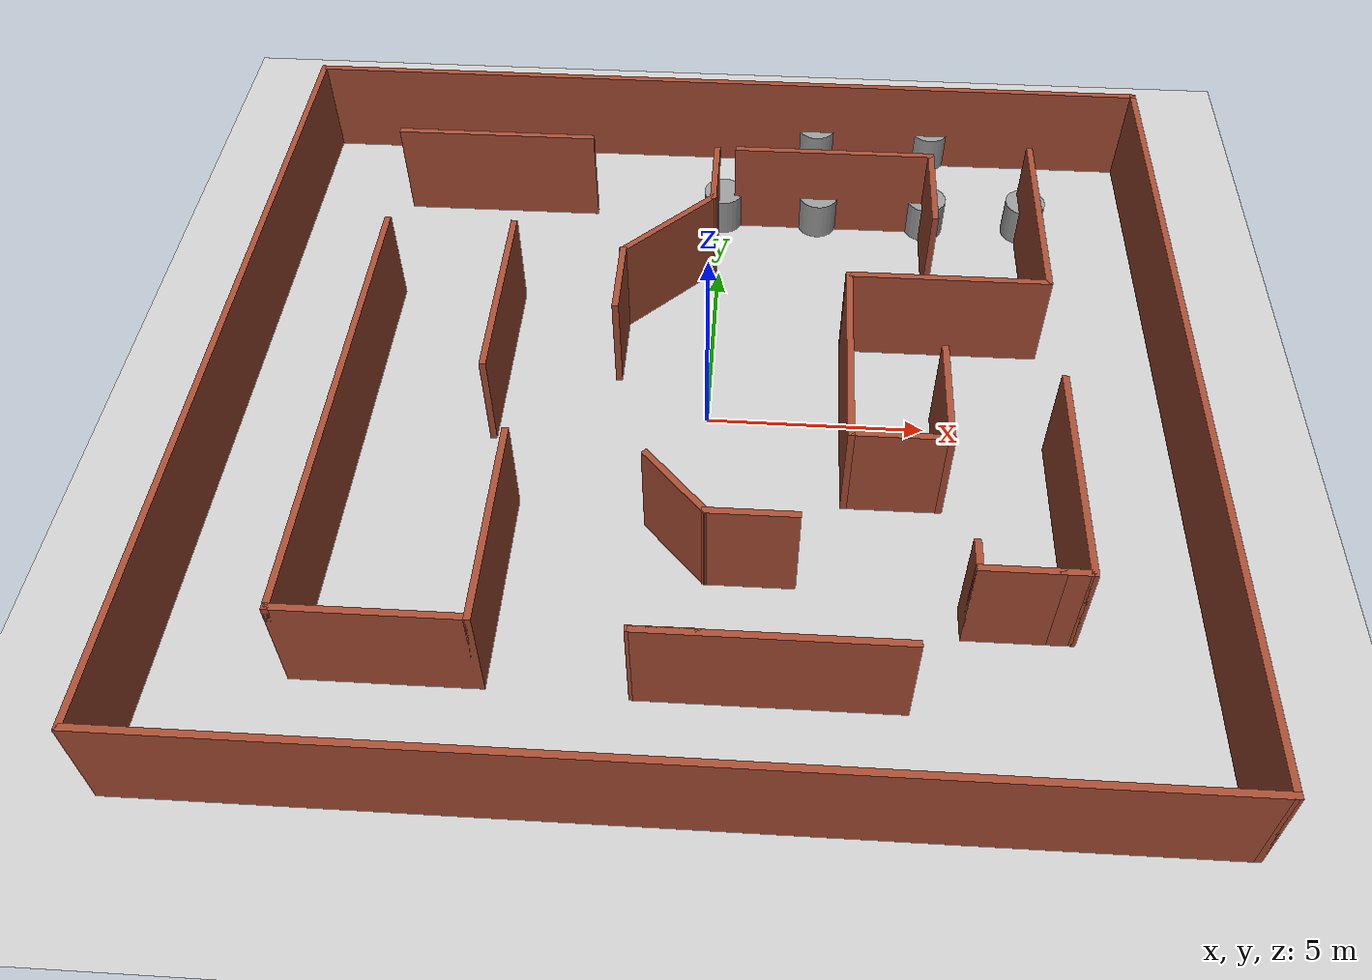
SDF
<sdf version="1.7">
 <world name="default">
  <light name="sun" type="directional">
   <pose>0 0 10 0 -0 0</pose>
   <diffuse>0.8 0.8 0.8 1</diffuse>
   <specular>0.2 0.2 0.2 1</specular>
   <attenuation>
    <range>1000</range>
    <constant>0.9</constant>
    <linear>0.01</linear>
    <quadratic>0.001</quadratic>
   </attenuation>
   <direction>-0.5 0.1 -0.9</direction>
   <spot><inner_angle>0</inner_angle><outer_angle>0</outer_angle><falloff>0</falloff></spot>
  </light>
  <model name="ground_plane">
   <static>1</static>
   <link name="link">
    <collision name="collision">
     <geometry><plane><normal>0 0 1</normal><size>100 100</size></plane></geometry>
     <surface>
      <contact><collide_bitmask>65535</collide_bitmask></contact>
      <friction><ode><mu>100</mu><mu2>50</mu2></ode></friction>
     </surface>
    </collision>
    <visual name="visual">
     <cast_shadows>0</cast_shadows>
     <geometry><plane><normal>0 0 1</normal><size>100 100</size></plane></geometry>
     <material>
      <script><uri>file://media/materials/scripts/gazebo.material</uri><name>Gazebo/Grey</name></script>
     </material>
    </visual>
   </link>
  </model>
  <gravity>0 0 -9.8</gravity>
  <magnetic_field>6e-06 2.3e-05 -4.2e-05</magnetic_field>
  <atmosphere type="adiabatic"/>
  <physics type="ode">
   <max_step_size>0.001</max_step_size>
   <real_time_factor>1</real_time_factor>
   <real_time_update_rate>1000</real_time_update_rate>
  </physics>
  <scene><ambient>0.4 0.4 0.4 1</ambient><background>0.7 0.7 0.7 1</background><shadows>1</shadows></scene>
  <spherical_coordinates>
   <surface_model>EARTH_WGS84</surface_model>
   <latitude_deg>0</latitude_deg>
   <longitude_deg>0</longitude_deg>
   <elevation>0</elevation>
   <heading_deg>0</heading_deg>
  </spherical_coordinates>
  <model name="Maze">
   <pose>-0.139505 -0.083263 0 0 -0 0</pose>
   <link name="Wall_11">
    <collision name="Wall_11_Collision">
     <geometry><box><size>11.25 0.15 2.5</size></box></geometry>
     <pose>0 0 1.25 0 -0 0</pose>
    </collision>
    <visual name="Wall_11_Visual">
     <pose>0 0 1.25 0 -0 0</pose>
     <geometry><box><size>11.25 0.15 2.5</size></box></geometry>
     <material>
      <script><uri>file://media/materials/scripts/gazebo.material</uri><name>Gazebo/Bricks</name></script>
      <ambient>1 1 1 1</ambient>
     </material>
     <meta><layer>0</layer></meta>
    </visual>
    <pose>-7.81701 -1.66337 0 0 -0 -1.5708</pose>
   </link>
   <link name="Wall_12">
    <collision name="Wall_12_Collision">
     <geometry><box><size>4 0.15 2.5</size></box></geometry>
     <pose>0 0 1.25 0 -0 0</pose>
    </collision>
    <visual name="Wall_12_Visual">
     <pose>0 0 1.25 0 -0 0</pose>
     <geometry><box><size>4 0.15 2.5</size></box></geometry>
     <material>
      <script><uri>file://media/materials/scripts/gazebo.material</uri><name>Gazebo/Bricks</name></script>
      <ambient>1 1 1 1</ambient>
     </material>
     <meta><layer>0</layer></meta>
    </visual>
    <pose>-5.89201 -7.21337 0 0 -0 0</pose>
   </link>
   <link name="Wall_13">
    <collision name="Wall_13_Collision">
     <geometry><box><size>4.75 0.15 2.5</size></box></geometry>
     <pose>0 0 1.25 0 -0 0</pose>
    </collision>
    <visual name="Wall_13_Visual">
     <pose>0 0 1.25 0 -0 0</pose>
     <geometry><box><size>4.75 0.15 2.5</size></box></geometry>
     <material>
      <script><uri>file://media/materials/scripts/gazebo.material</uri><name>Gazebo/Bricks</name></script>
      <ambient>1 1 1 1</ambient>
     </material>
     <meta><layer>0</layer></meta>
    </visual>
    <pose>-3.96701 -4.91337 0 0 -0 1.5708</pose>
   </link>
   <link name="Wall_15">
    <collision name="Wall_15_Collision">
     <geometry><box><size>4.75 0.15 2.5</size></box></geometry>
     <pose>0 0 1.25 0 -0 0</pose>
    </collision>
    <visual name="Wall_15_Visual">
     <pose>0 0 1.25 0 -0 0</pose>
     <geometry><box><size>4.75 0.15 2.5</size></box></geometry>
     <material>
      <script><uri>file://media/materials/scripts/gazebo.material</uri><name>Gazebo/Bricks</name></script>
      <ambient>1 1 1 1</ambient>
     </material>
     <meta><layer>0</layer></meta>
    </visual>
    <pose>-4.75721 1.63615 0 0 -0 1.5708</pose>
   </link>
   <link name="Wall_17">
    <collision name="Wall_17_Collision">
     <geometry><box><size>2.5 0.15 2.5</size></box></geometry>
     <pose>0 0 1.25 0 -0 0</pose>
    </collision>
    <visual name="Wall_17_Visual">
     <pose>0 0 1.25 0 -0 0</pose>
     <geometry><box><size>2.5 0.15 2.5</size></box></geometry>
     <material>
      <script><uri>file://media/materials/scripts/gazebo.material</uri><name>Gazebo/Bricks</name></script>
      <ambient>1 1 1 1</ambient>
     </material>
     <meta><layer>0</layer></meta>
    </visual>
    <pose>5.36367 5.92465 0 0 -0 1.5708</pose>
   </link>
   <link name="Wall_18">
    <collision name="Wall_18_Collision">
     <geometry><box><size>5 0.15 2.5</size></box></geometry>
     <pose>0 0 1.25 0 -0 0</pose>
    </collision>
    <visual name="Wall_18_Visual">
     <pose>0 0 1.25 0 -0 0</pose>
     <geometry><box><size>5 0.15 2.5</size></box></geometry>
     <material>
      <script><uri>file://media/materials/scripts/gazebo.material</uri><name>Gazebo/Bricks</name></script>
      <ambient>1 1 1 1</ambient>
     </material>
     <meta><layer>0</layer></meta>
    </visual>
    <pose>2.93867 7.09965 0 0 -0 3.14159</pose>
   </link>
   <link name="Wall_20">
    <collision name="Wall_20_Collision">
     <geometry><box><size>2 0.15 2.5</size></box></geometry>
     <pose>0 0 1.25 0 -0 0</pose>
    </collision>
    <visual name="Wall_20_Visual">
     <pose>0 0 1.25 0 -0 0</pose>
     <geometry><box><size>2 0.15 2.5</size></box></geometry>
     <material>
      <script><uri>file://media/materials/scripts/gazebo.material</uri><name>Gazebo/Bricks</name></script>
      <ambient>1 1 1 1</ambient>
     </material>
     <meta><layer>0</layer></meta>
    </visual>
    <pose>1.25924 -4.43635 0 0 -0 0</pose>
   </link>
   <link name="Wall_23">
    <collision name="Wall_23_Collision">
     <geometry><box><size>5 0.15 2.5</size></box></geometry>
     <pose>0 0 1.25 0 -0 0</pose>
    </collision>
    <visual name="Wall_23_Visual">
     <pose>0 0 1.25 0 -0 0</pose>
     <geometry><box><size>5 0.15 2.5</size></box></geometry>
     <material>
      <script><uri>file://media/materials/scripts/gazebo.material</uri><name>Gazebo/Bricks</name></script>
      <ambient>1 1 1 1</ambient>
     </material>
     <meta><layer>0</layer></meta>
    </visual>
    <pose>7.87163 5.03979 0 0 -0 -1.5708</pose>
   </link>
   <link name="Wall_24">
    <collision name="Wall_24_Collision">
     <geometry><box><size>4.75 0.15 2.5</size></box></geometry>
     <pose>0 0 1.25 0 -0 0</pose>
    </collision>
    <visual name="Wall_24_Visual">
     <pose>0 0 1.25 0 -0 0</pose>
     <geometry><box><size>4.75 0.15 2.5</size></box></geometry>
     <material>
      <script><uri>file://media/materials/scripts/gazebo.material</uri><name>Gazebo/Bricks</name></script>
      <ambient>1 1 1 1</ambient>
     </material>
     <meta><layer>0</layer></meta>
    </visual>
    <pose>5.57163 2.61479 0 0 -0 3.14159</pose>
   </link>
   <link name="Wall_25">
    <collision name="Wall_25_Collision">
     <geometry><box><size>5 0.15 2.5</size></box></geometry>
     <pose>0 0 1.25 0 -0 0</pose>
    </collision>
    <visual name="Wall_25_Visual">
     <pose>0 0 1.25 0 -0 0</pose>
     <geometry><box><size>5 0.15 2.5</size></box></geometry>
     <material>
      <script><uri>file://media/materials/scripts/gazebo.material</uri><name>Gazebo/Bricks</name></script>
      <ambient>1 1 1 1</ambient>
     </material>
     <meta><layer>0</layer></meta>
    </visual>
    <pose>3.27163 0.189788 0 0 -0 -1.5708</pose>
   </link>
   <link name="Wall_26">
    <collision name="Wall_26_Collision">
     <geometry><box><size>2.25 0.15 2.5</size></box></geometry>
     <pose>0 0 1.25 0 -0 0</pose>
    </collision>
    <visual name="Wall_26_Visual">
     <pose>0 0 1.25 0 -0 0</pose>
     <geometry><box><size>2.25 0.15 2.5</size></box></geometry>
     <material>
      <script><uri>file://media/materials/scripts/gazebo.material</uri><name>Gazebo/Bricks</name></script>
      <ambient>1 1 1 1</ambient>
     </material>
     <meta><layer>0</layer></meta>
    </visual>
    <pose>4.32163 -2.23521 0 0 -0 0</pose>
   </link>
   <link name="Wall_27">
    <collision name="Wall_27_Collision">
     <geometry><box><size>2.75 0.15 2.5</size></box></geometry>
     <pose>0 0 1.25 0 -0 0</pose>
    </collision>
    <visual name="Wall_27_Visual">
     <pose>0 0 1.25 0 -0 0</pose>
     <geometry><box><size>2.75 0.15 2.5</size></box></geometry>
     <material>
      <script><uri>file://media/materials/scripts/gazebo.material</uri><name>Gazebo/Bricks</name></script>
      <ambient>1 1 1 1</ambient>
     </material>
     <meta><layer>0</layer></meta>
    </visual>
    <pose>5.37163 -0.935212 0 0 -0 1.5708</pose>
   </link>
   <link name="Wall_30">
    <collision name="Wall_30_Collision">
     <geometry><box><size>1.4509 0.15 2.5</size></box></geometry>
     <pose>0 0 1.25 0 -0 0</pose>
    </collision>
    <visual name="Wall_30_Visual">
     <pose>0 0 1.25 0 -0 0</pose>
     <geometry><box><size>1.4509 0.15 2.5</size></box></geometry>
     <material>
      <script><uri>file://media/materials/scripts/gazebo.material</uri><name>Gazebo/Bricks</name></script>
      <ambient>1 1 1 1</ambient>
     </material>
     <meta><layer>0</layer></meta>
    </visual>
    <pose>-0.278358 -7.2847 0 0 -0 -3.13478</pose>
   </link>
   <link name="Wall_31">
    <collision name="Wall_31_Collision">
     <geometry><box><size>5.5 0.15 2.5</size></box></geometry>
     <pose>0 0 1.25 0 -0 0</pose>
    </collision>
    <visual name="Wall_31_Visual">
     <pose>0 0 1.25 0 -0 0</pose>
     <geometry><box><size>5.5 0.15 2.5</size></box></geometry>
     <material>
      <script><uri>file://media/materials/scripts/gazebo.material</uri><name>Gazebo/Bricks</name></script>
      <ambient>1 1 1 1</ambient>
     </material>
     <meta><layer>0</layer></meta>
    </visual>
    <pose>1.79106 -7.28913 0 0 -0 0</pose>
   </link>
   <link name="Wall_34">
    <collision name="Wall_34_Collision">
     <geometry><box><size>0.75 0.15 2.5</size></box></geometry>
     <pose>0 0 1.25 0 -0 0</pose>
    </collision>
    <visual name="Wall_34_Visual">
     <pose>0 0 1.25 0 -0 0</pose>
     <geometry><box><size>0.75 0.15 2.5</size></box></geometry>
     <material>
      <script><uri>file://media/materials/scripts/gazebo.material</uri><name>Gazebo/Bricks</name></script>
      <ambient>1 1 1 1</ambient>
     </material>
     <meta><layer>0</layer></meta>
    </visual>
    <pose>5.71846 -5.20336 0 0 -0 -1.5708</pose>
   </link>
   <link name="Wall_35">
    <collision name="Wall_35_Collision">
     <geometry><box><size>1.75 0.15 2.5</size></box></geometry>
     <pose>0 0 1.25 0 -0 0</pose>
    </collision>
    <visual name="Wall_35_Visual">
     <pose>0 0 1.25 0 -0 0</pose>
     <geometry><box><size>1.75 0.15 2.5</size></box></geometry>
     <material>
      <script><uri>file://media/materials/scripts/gazebo.material</uri><name>Gazebo/Bricks</name></script>
      <ambient>1 1 1 1</ambient>
     </material>
     <meta><layer>0</layer></meta>
    </visual>
    <pose>6.51846 -5.50336 0 0 -0 0</pose>
   </link>
   <link name="Wall_36">
    <collision name="Wall_36_Collision">
     <geometry><box><size>0.75 0.15 2.5</size></box></geometry>
     <pose>0 0 1.25 0 -0 0</pose>
    </collision>
    <visual name="Wall_36_Visual">
     <pose>0 0 1.25 0 -0 0</pose>
     <geometry><box><size>0.75 0.15 2.5</size></box></geometry>
     <material>
      <script><uri>file://media/materials/scripts/gazebo.material</uri><name>Gazebo/Bricks</name></script>
      <ambient>1 1 1 1</ambient>
     </material>
     <meta><layer>0</layer></meta>
    </visual>
    <pose>7.61846 -5.50336 0 0 -0 0</pose>
   </link>
   <link name="Wall_37">
    <collision name="Wall_37_Collision">
     <geometry><box><size>5.25 0.15 2.5</size></box></geometry>
     <pose>0 0 1.25 0 -0 0</pose>
    </collision>
    <visual name="Wall_37_Visual">
     <pose>0 0 1.25 0 -0 0</pose>
     <geometry><box><size>5.25 0.15 2.5</size></box></geometry>
     <material>
      <script><uri>file://media/materials/scripts/gazebo.material</uri><name>Gazebo/Bricks</name></script>
      <ambient>1 1 1 1</ambient>
     </material>
     <meta><layer>0</layer></meta>
    </visual>
    <pose>7.91846 -2.95336 0 0 -0 1.5708</pose>
   </link>
   <link name="Wall_39">
    <collision name="Wall_39_Collision">
     <geometry><box><size>3 0.15 2.5</size></box></geometry>
     <pose>0 0 1.25 0 -0 0</pose>
    </collision>
    <visual name="Wall_39_Visual">
     <pose>0 0 1.25 0 -0 0</pose>
     <geometry><box><size>3 0.15 2.5</size></box></geometry>
     <material>
      <script><uri>file://media/materials/scripts/gazebo.material</uri><name>Gazebo/Bricks</name></script>
      <ambient>1 1 1 1</ambient>
     </material>
     <meta><layer>0</layer></meta>
    </visual>
    <pose>-1.0343 4.16607 0 0 -0 0.785398</pose>
   </link>
   <link name="Wall_4">
    <collision name="Wall_4_Collision">
     <geometry><box><size>20 0.15 2.5</size></box></geometry>
     <pose>0 0 1.25 0 -0 0</pose>
    </collision>
    <visual name="Wall_4_Visual">
     <pose>0 0 1.25 0 -0 0</pose>
     <geometry><box><size>20 0.15 2.5</size></box></geometry>
     <material>
      <script><uri>file://media/materials/scripts/gazebo.material</uri><name>Gazebo/Bricks</name></script>
      <ambient>1 1 1 1</ambient>
     </material>
     <meta><layer>0</layer></meta>
    </visual>
    <pose>-10.8 -0 0 0 -0 -1.5708</pose>
   </link>
   <link name="Wall_41">
    <collision name="Wall_41_Collision">
     <geometry><box><size>2 0.15 2.5</size></box></geometry>
     <pose>0 0 1.25 0 -0 0</pose>
    </collision>
    <visual name="Wall_41_Visual">
     <pose>0 0 1.25 0 -0 0</pose>
     <geometry><box><size>2 0.15 2.5</size></box></geometry>
     <material>
      <script><uri>file://media/materials/scripts/gazebo.material</uri><name>Gazebo/Bricks</name></script>
      <ambient>1 1 1 1</ambient>
     </material>
     <meta><layer>0</layer></meta>
    </visual>
    <pose>-0.026671 6.0987 0 0 -0 1.5708</pose>
   </link>
   <link name="Wall_43">
    <collision name="Wall_43_Collision">
     <geometry><box><size>2 0.15 2.5</size></box></geometry>
     <pose>0 0 1.25 0 -0 0</pose>
    </collision>
    <visual name="Wall_43_Visual">
     <pose>0 0 1.25 0 -0 0</pose>
     <geometry><box><size>2 0.15 2.5</size></box></geometry>
     <material>
      <script><uri>file://media/materials/scripts/gazebo.material</uri><name>Gazebo/Bricks</name></script>
      <ambient>1 1 1 1</ambient>
     </material>
     <meta><layer>0</layer></meta>
    </visual>
    <pose>-2.04192 2.23345 0 0 -0 -1.5708</pose>
   </link>
   <link name="Wall_45">
    <collision name="Wall_45_Collision">
     <geometry><box><size>2.06346 0.15 2.5</size></box></geometry>
     <pose>0 0 1.25 0 -0 0</pose>
    </collision>
    <visual name="Wall_45_Visual">
     <pose>0 0 1.25 0 -0 0</pose>
     <geometry><box><size>2.06346 0.15 2.5</size></box></geometry>
     <material>
      <script><uri>file://media/materials/scripts/gazebo.material</uri><name>Gazebo/Bricks</name></script>
      <ambient>1 1 1 1</ambient>
     </material>
     <meta><layer>0</layer></meta>
    </visual>
    <pose>-0.31555 -3.73413 0 0 -0 -0.824155</pose>
   </link>
   <link name="Wall_5">
    <collision name="Wall_5_Collision">
     <geometry><box><size>21.75 0.15 2.5</size></box></geometry>
     <pose>0 0 1.25 0 -0 0</pose>
    </collision>
    <visual name="Wall_5_Visual">
     <pose>0 0 1.25 0 -0 0</pose>
     <geometry><box><size>21.75 0.15 2.5</size></box></geometry>
     <material>
      <script><uri>file://media/materials/scripts/gazebo.material</uri><name>Gazebo/Bricks</name></script>
      <ambient>1 1 1 1</ambient>
     </material>
     <meta><layer>0</layer></meta>
    </visual>
    <pose>-0 -9.925 0 0 -0 0</pose>
   </link>
   <link name="Wall_6">
    <collision name="Wall_6_Collision">
     <geometry><box><size>20 0.15 2.5</size></box></geometry>
     <pose>0 0 1.25 0 -0 0</pose>
    </collision>
    <visual name="Wall_6_Visual">
     <pose>0 0 1.25 0 -0 0</pose>
     <geometry><box><size>20 0.15 2.5</size></box></geometry>
     <material>
      <script><uri>file://media/materials/scripts/gazebo.material</uri><name>Gazebo/Bricks</name></script>
      <ambient>1 1 1 1</ambient>
     </material>
     <meta><layer>0</layer></meta>
    </visual>
    <pose>10.8 -0 0 0 -0 1.5708</pose>
   </link>
   <link name="Wall_7">
    <collision name="Wall_7_Collision">
     <geometry><box><size>21.75 0.15 2.5</size></box></geometry>
     <pose>0 0 1.25 0 -0 0</pose>
    </collision>
    <visual name="Wall_7_Visual">
     <pose>0 0 1.25 0 -0 0</pose>
     <geometry><box><size>21.75 0.15 2.5</size></box></geometry>
     <material>
      <script><uri>file://media/materials/scripts/gazebo.material</uri><name>Gazebo/Bricks</name></script>
      <ambient>1 1 1 1</ambient>
     </material>
     <meta><layer>0</layer></meta>
    </visual>
    <pose>-0 9.925 0 0 -0 3.14159</pose>
   </link>
   <link name="Wall_9">
    <collision name="Wall_9_Collision">
     <geometry><box><size>5 0.15 2.5</size></box></geometry>
     <pose>0 0 1.25 0 -0 0</pose>
    </collision>
    <visual name="Wall_9_Visual">
     <pose>0 0 1.25 0 -0 0</pose>
     <geometry><box><size>5 0.15 2.5</size></box></geometry>
     <material>
      <script><uri>file://media/materials/scripts/gazebo.material</uri><name>Gazebo/Bricks</name></script>
      <ambient>1 1 1 1</ambient>
     </material>
     <meta><layer>0</layer></meta>
    </visual>
    <pose>-5.70583 7.33871 0 0 -0 0</pose>
   </link>
   <static>1</static>
  </model>
  <model name="unit_cylinder">
   <pose>5.28739 7.11356 0.5 0 -0 0</pose>
   <link name="link">
    <inertial>
     <mass>1</mass>
     <inertia><ixx>0.145833</ixx><ixy>0</ixy><ixz>0</ixz><iyy>0.145833</iyy><iyz>0</iyz><izz>0.125</izz></inertia>
    </inertial>
    <collision name="collision">
     <geometry><cylinder><radius>0.5</radius><length>1</length></cylinder></geometry>
    </collision>
    <visual name="visual">
     <geometry><cylinder><radius>0.5</radius><length>1</length></cylinder></geometry>
     <material>
      <script><name>Gazebo/Grey</name><uri>file://media/materials/scripts/gazebo.material</uri></script>
     </material>
    </visual>
   </link>
  </model>
  <model name="unit_cylinder_0">
   <pose>7.84524 7.13402 0.5 0 -0 0</pose>
   <link name="link">
    <inertial>
     <mass>1</mass>
     <inertia><ixx>0.145833</ixx><ixy>0</ixy><ixz>0</ixz><iyy>0.145833</iyy><iyz>0</iyz><izz>0.125</izz></inertia>
    </inertial>
    <collision name="collision">
     <geometry><cylinder><radius>0.5</radius><length>1</length></cylinder></geometry>
    </collision>
    <visual name="visual">
     <geometry><cylinder><radius>0.5</radius><length>1</length></cylinder></geometry>
     <material>
      <script><name>Gazebo/Grey</name><uri>file://media/materials/scripts/gazebo.material</uri></script>
     </material>
    </visual>
   </link>
  </model>
  <model name="unit_cylinder_1">
   <pose>5.51376 10.0347 0.5 0 -0 0</pose>
   <link name="link">
    <inertial>
     <mass>1</mass>
     <inertia><ixx>0.145833</ixx><ixy>0</ixy><ixz>0</ixz><iyy>0.145833</iyy><iyz>0</iyz><izz>0.125</izz></inertia>
    </inertial>
    <collision name="collision">
     <geometry><cylinder><radius>0.5</radius><length>1</length></cylinder></geometry>
    </collision>
    <visual name="visual">
     <geometry><cylinder><radius>0.5</radius><length>1</length></cylinder></geometry>
     <material>
      <script><name>Gazebo/Grey</name><uri>file://media/materials/scripts/gazebo.material</uri></script>
     </material>
    </visual>
   </link>
  </model>
  <model name="unit_cylinder_2">
   <pose>0.010489 7.11519 0.5 0 -0 0</pose>
   <link name="link">
    <inertial>
     <mass>1</mass>
     <inertia><ixx>0.145833</ixx><ixy>0</ixy><ixz>0</ixz><iyy>0.145833</iyy><iyz>0</iyz><izz>0.125</izz></inertia>
    </inertial>
    <collision name="collision">
     <geometry><cylinder><radius>0.5</radius><length>1</length></cylinder></geometry>
    </collision>
    <visual name="visual">
     <geometry><cylinder><radius>0.5</radius><length>1</length></cylinder></geometry>
     <material>
      <script><name>Gazebo/Grey</name><uri>file://media/materials/scripts/gazebo.material</uri></script>
     </material>
    </visual>
   </link>
  </model>
  <model name="unit_cylinder_3">
   <pose>2.48638 7.09535 0.5 0 -0 0</pose>
   <link name="link">
    <inertial>
     <mass>1</mass>
     <inertia><ixx>0.145833</ixx><ixy>0</ixy><ixz>0</ixz><iyy>0.145833</iyy><iyz>0</iyz><izz>0.125</izz></inertia>
    </inertial>
    <collision name="collision">
     <geometry><cylinder><radius>0.5</radius><length>1</length></cylinder></geometry>
    </collision>
    <visual name="visual">
     <geometry><cylinder><radius>0.5</radius><length>1</length></cylinder></geometry>
     <material>
      <script><name>Gazebo/Grey</name><uri>file://media/materials/scripts/gazebo.material</uri></script>
     </material>
    </visual>
   </link>
  </model>
  <model name="unit_cylinder_4">
   <pose>2.42821 9.97765 0.5 0 -0 0</pose>
   <link name="link">
    <inertial>
     <mass>1</mass>
     <inertia><ixx>0.145833</ixx><ixy>0</ixy><ixz>0</ixz><iyy>0.145833</iyy><iyz>0</iyz><izz>0.125</izz></inertia>
    </inertial>
    <collision name="collision">
     <geometry><cylinder><radius>0.5</radius><length>1</length></cylinder></geometry>
    </collision>
    <visual name="visual">
     <geometry><cylinder><radius>0.5</radius><length>1</length></cylinder></geometry>
     <material>
      <script><name>Gazebo/Grey</name><uri>file://media/materials/scripts/gazebo.material</uri></script>
     </material>
    </visual>
   </link>
  </model>
 </world>
</sdf>
